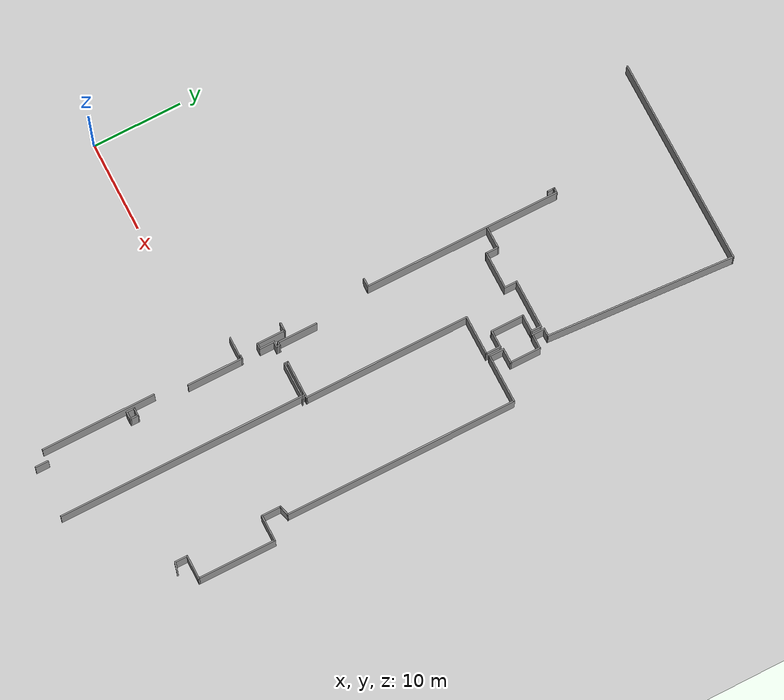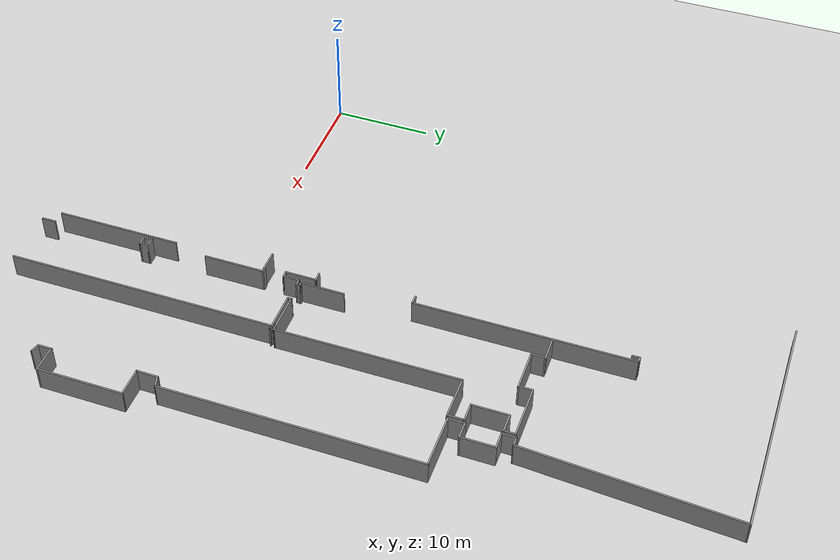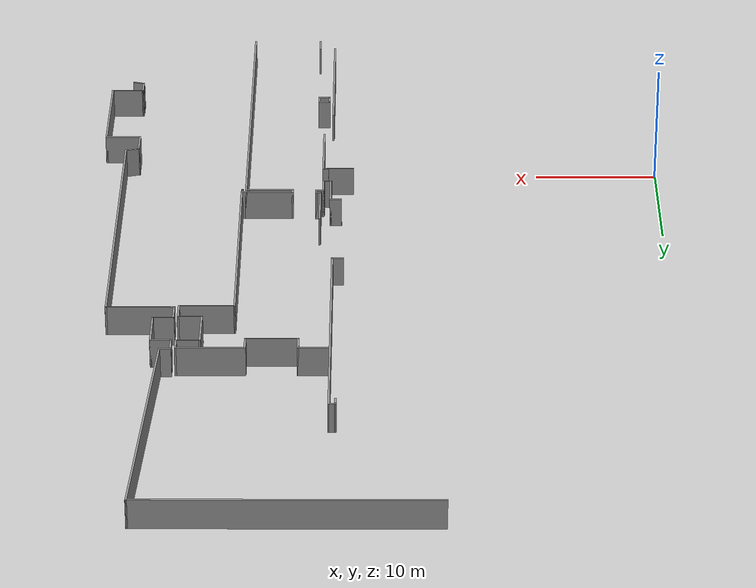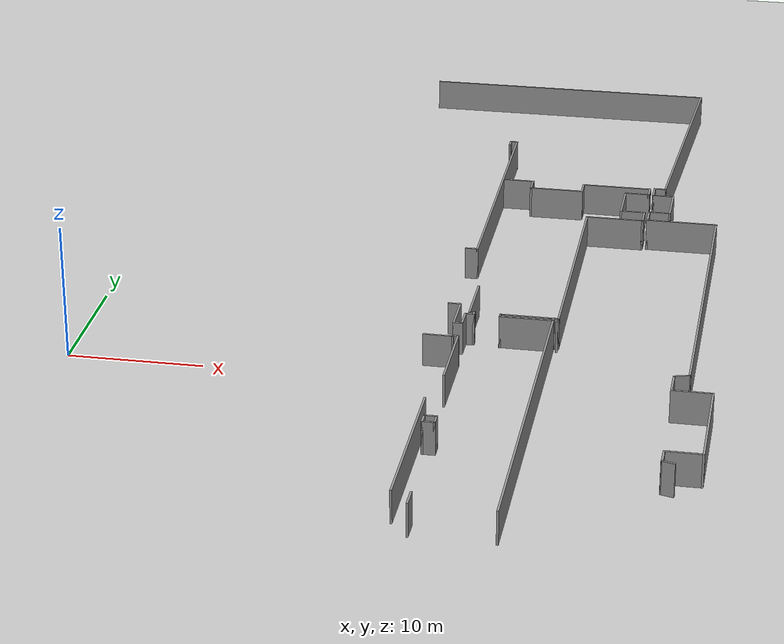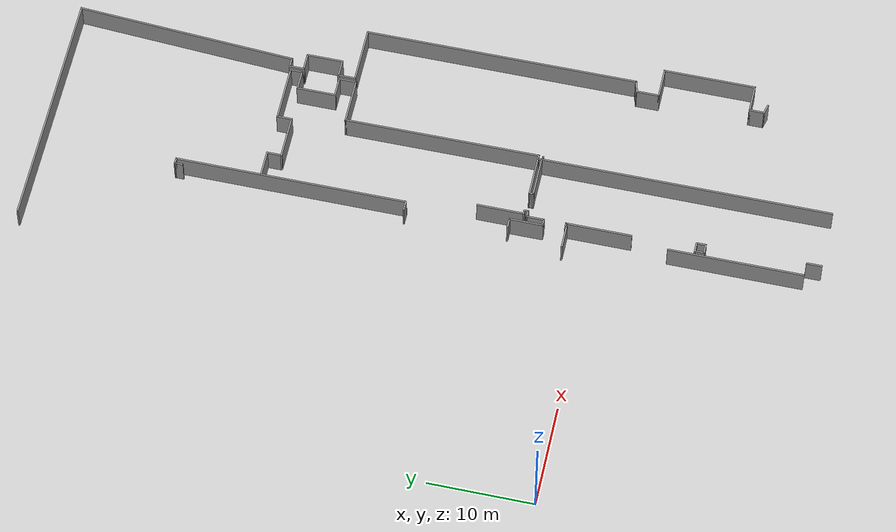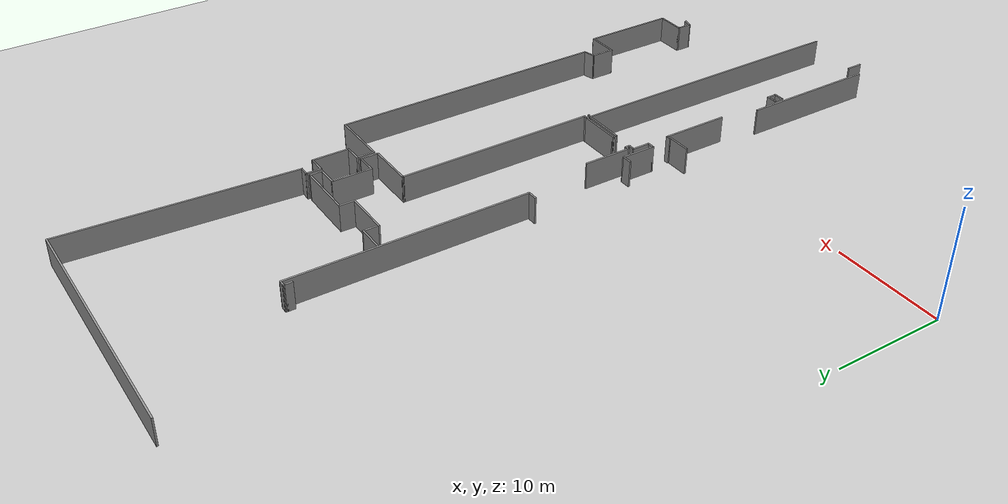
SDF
<sdf version="1.6">
 <world name="default">
  <model name="ground_plane">
   <static>1</static>
   <link name="link">
    <collision name="collision">
     <geometry><plane><normal>0 0 1</normal><size>100 100</size></plane></geometry>
     <surface><friction><ode><mu>100</mu><mu2>50</mu2></ode></friction></surface>
    </collision>
    <visual name="visual">
     <cast_shadows>0</cast_shadows>
     <geometry><plane><normal>0 0 1</normal><size>100 100</size></plane></geometry>
     <material>
      <script><uri>file://media/materials/scripts/gazebo.material</uri><name>Gazebo/Grey</name></script>
     </material>
    </visual>
   </link>
  </model>
  <model name="SEH_double_doors_open">
   <pose>0.441181 0.582592 0 0 -0 0</pose>
   <link name="Wall_12">
    <collision name="Wall_12_Collision">
     <geometry><box><size>1 0.15 2.5</size></box></geometry>
     <pose>0 0 1.25 0 -0 0</pose>
    </collision>
    <visual name="Wall_12_Visual">
     <pose>0 0 1.25 0 -0 0</pose>
     <geometry><box><size>1 0.15 2.5</size></box></geometry>
     <material>
      <script><uri>file://media/materials/scripts/gazebo.material</uri><name>Gazebo/Grey</name></script>
      <ambient>1 1 1 1</ambient>
     </material>
     <meta><layer>0</layer></meta>
    </visual>
    <pose>26.1957 17.3863 0 0 -0 0</pose>
   </link>
   <link name="Wall_128">
    <collision name="Wall_128_Collision">
     <geometry><box><size>6.25 0.15 2.5</size></box></geometry>
     <pose>0 0 1.25 0 -0 0</pose>
    </collision>
    <visual name="Wall_128_Visual">
     <pose>0 0 1.25 0 -0 0</pose>
     <geometry><box><size>6.25 0.15 2.5</size></box></geometry>
     <material>
      <script><uri>file://media/materials/scripts/gazebo.material</uri><name>Gazebo/Grey</name></script>
      <ambient>1 1 1 1</ambient>
     </material>
     <meta><layer>0</layer></meta>
    </visual>
    <pose>27.5298 -0.604664 0 0 -0 1.5708</pose>
   </link>
   <link name="Wall_129">
    <collision name="Wall_129_Collision">
     <geometry><box><size>0.5 0.15 2.5</size></box></geometry>
     <pose>0 0 1.25 0 -0 0</pose>
    </collision>
    <visual name="Wall_129_Visual">
     <pose>0 0 1.25 0 -0 0</pose>
     <geometry><box><size>0.5 0.15 2.5</size></box></geometry>
     <material>
      <script><uri>file://media/materials/scripts/gazebo.material</uri><name>Gazebo/Grey</name></script>
      <ambient>1 1 1 1</ambient>
     </material>
     <meta><layer>0</layer></meta>
    </visual>
    <pose>27.3548 2.44534 0 0 -0 3.14159</pose>
   </link>
   <link name="Wall_13">
    <collision name="Wall_13_Collision">
     <geometry><box><size>22 0.15 2.5</size></box></geometry>
     <pose>0 0 1.25 0 -0 0</pose>
    </collision>
    <visual name="Wall_13_Visual">
     <pose>0 0 1.25 0 -0 0</pose>
     <geometry><box><size>22 0.15 2.5</size></box></geometry>
     <material>
      <script><uri>file://media/materials/scripts/gazebo.material</uri><name>Gazebo/Grey</name></script>
      <ambient>1 1 1 1</ambient>
     </material>
     <meta><layer>0</layer></meta>
    </visual>
    <pose>26.6207 28.3113 0 0 -0 1.5708</pose>
   </link>
   <link name="Wall_133">
    <collision name="Wall_133_Collision">
     <geometry><box><size>0.25 0.15 2.5</size></box></geometry>
     <pose>0 0 1.25 0 -0 0</pose>
    </collision>
    <visual name="Wall_133_Visual">
     <pose>0 0 1.25 0 -0 0</pose>
     <geometry><box><size>0.25 0.15 2.5</size></box></geometry>
     <material>
      <script><uri>file://media/materials/scripts/gazebo.material</uri><name>Gazebo/Grey</name></script>
      <ambient>1 1 1 1</ambient>
     </material>
     <meta><layer>0</layer></meta>
    </visual>
    <pose>27.1798 2.39534 0 0 0 -1.5708</pose>
   </link>
   <link name="Wall_134">
    <collision name="Wall_134_Collision">
     <geometry><box><size>2.25 0.15 2.5</size></box></geometry>
     <pose>0 0 1.25 0 -0 0</pose>
    </collision>
    <visual name="Wall_134_Visual">
     <pose>0 0 1.25 0 -0 0</pose>
     <geometry><box><size>2.25 0.15 2.5</size></box></geometry>
     <material>
      <script><uri>file://media/materials/scripts/gazebo.material</uri><name>Gazebo/Grey</name></script>
      <ambient>1 1 1 1</ambient>
     </material>
     <meta><layer>0</layer></meta>
    </visual>
    <pose>26.1298 2.34534 0 0 -0 3.14159</pose>
   </link>
   <link name="Wall_144">
    <collision name="Wall_144_Collision">
     <geometry><box><size>1 0.15 2.5</size></box></geometry>
     <pose>0 0 1.25 0 -0 0</pose>
    </collision>
    <visual name="Wall_144_Visual">
     <pose>0 0 1.25 0 -0 0</pose>
     <geometry><box><size>1 0.15 2.5</size></box></geometry>
     <material>
      <script><uri>file://media/materials/scripts/gazebo.material</uri><name>Gazebo/Grey</name></script>
      <ambient>1 1 1 1</ambient>
     </material>
     <meta><layer>0</layer></meta>
    </visual>
    <pose>26.4548 7.64534 0 0 -0 0</pose>
   </link>
   <link name="Wall_145">
    <collision name="Wall_145_Collision">
     <geometry><box><size>3.25 0.15 2.5</size></box></geometry>
     <pose>0 0 1.25 0 -0 0</pose>
    </collision>
    <visual name="Wall_145_Visual">
     <pose>0 0 1.25 0 -0 0</pose>
     <geometry><box><size>3.25 0.15 2.5</size></box></geometry>
     <material>
      <script><uri>file://media/materials/scripts/gazebo.material</uri><name>Gazebo/Grey</name></script>
      <ambient>1 1 1 1</ambient>
     </material>
     <meta><layer>0</layer></meta>
    </visual>
    <pose>26.8798 6.09534 0 0 0 -1.5708</pose>
   </link>
   <link name="Wall_146">
    <collision name="Wall_146_Collision">
     <geometry><box><size>0.75 0.15 2.5</size></box></geometry>
     <pose>0 0 1.25 0 -0 0</pose>
    </collision>
    <visual name="Wall_146_Visual">
     <pose>0 0 1.25 0 -0 0</pose>
     <geometry><box><size>0.75 0.15 2.5</size></box></geometry>
     <material>
      <script><uri>file://media/materials/scripts/gazebo.material</uri><name>Gazebo/Grey</name></script>
      <ambient>1 1 1 1</ambient>
     </material>
     <meta><layer>0</layer></meta>
    </visual>
    <pose>27.1798 4.54534 0 0 -0 0</pose>
   </link>
   <link name="Wall_147">
    <collision name="Wall_147_Collision">
     <geometry><box><size>1.75 0.15 2.5</size></box></geometry>
     <pose>0 0 1.25 0 -0 0</pose>
    </collision>
    <visual name="Wall_147_Visual">
     <pose>0 0 1.25 0 -0 0</pose>
     <geometry><box><size>1.75 0.15 2.5</size></box></geometry>
     <material>
      <script><uri>file://media/materials/scripts/gazebo.material</uri><name>Gazebo/Grey</name></script>
      <ambient>1 1 1 1</ambient>
     </material>
     <meta><layer>0</layer></meta>
    </visual>
    <pose>27.4798 5.34534 0 0 -0 1.5708</pose>
   </link>
   <link name="Wall_148">
    <collision name="Wall_148_Collision">
     <geometry><box><size>0.75 0.15 2.5</size></box></geometry>
     <pose>0 0 1.25 0 -0 0</pose>
    </collision>
    <visual name="Wall_148_Visual">
     <pose>0 0 1.25 0 -0 0</pose>
     <geometry><box><size>0.75 0.15 2.5</size></box></geometry>
     <material>
      <script><uri>file://media/materials/scripts/gazebo.material</uri><name>Gazebo/Grey</name></script>
      <ambient>1 1 1 1</ambient>
     </material>
     <meta><layer>0</layer></meta>
    </visual>
    <pose>27.7798 6.14534 0 0 -0 0</pose>
   </link>
   <link name="Wall_150">
    <collision name="Wall_150_Collision">
     <geometry><box><size>4 0.15 2.5</size></box></geometry>
     <pose>0 0 1.25 0 -0 0</pose>
    </collision>
    <visual name="Wall_150_Visual">
     <pose>0 0 1.25 0 -0 0</pose>
     <geometry><box><size>4 0.15 2.5</size></box></geometry>
     <material>
      <script><uri>file://media/materials/scripts/gazebo.material</uri><name>Gazebo/Grey</name></script>
      <ambient>1 1 1 1</ambient>
     </material>
     <meta><layer>0</layer></meta>
    </visual>
    <pose>31.9514 6.07094 0 0 -0 0</pose>
   </link>
   <link name="Wall_151">
    <collision name="Wall_151_Collision">
     <geometry><box><size>27.5 0.15 2.5</size></box></geometry>
     <pose>0 0 1.25 0 -0 0</pose>
    </collision>
    <visual name="Wall_151_Visual">
     <pose>0 0 1.25 0 -0 0</pose>
     <geometry><box><size>27.5 0.15 2.5</size></box></geometry>
     <material>
      <script><uri>file://media/materials/scripts/gazebo.material</uri><name>Gazebo/Grey</name></script>
      <ambient>1 1 1 1</ambient>
     </material>
     <meta><layer>0</layer></meta>
    </visual>
    <pose>33.8764 -7.60406 0 0 0 -1.5708</pose>
   </link>
   <link name="Wall_157">
    <collision name="Wall_157_Collision">
     <geometry><box><size>1.5 0.15 2.5</size></box></geometry>
     <pose>0 0 1.25 0 -0 0</pose>
    </collision>
    <visual name="Wall_157_Visual">
     <pose>0 0 1.25 0 -0 0</pose>
     <geometry><box><size>1.5 0.15 2.5</size></box></geometry>
     <material>
      <script><uri>file://media/materials/scripts/gazebo.material</uri><name>Gazebo/Grey</name></script>
      <ambient>1 1 1 1</ambient>
     </material>
     <meta><layer>0</layer></meta>
    </visual>
    <pose>28.1145 -20.6271 0 0 -0 1.5708</pose>
   </link>
   <link name="Wall_171">
    <collision name="Wall_171_Collision">
     <geometry><box><size>12.75 0.15 2.5</size></box></geometry>
     <pose>0 0 1.25 0 -0 0</pose>
    </collision>
    <visual name="Wall_171_Visual">
     <pose>0 0 1.25 0 -0 0</pose>
     <geometry><box><size>12.75 0.15 2.5</size></box></geometry>
     <material>
      <script><uri>file://media/materials/scripts/gazebo.material</uri><name>Gazebo/Grey</name></script>
      <ambient>1 1 1 1</ambient>
     </material>
     <meta><layer>0</layer></meta>
    </visual>
    <pose>26.8056 -13.5556 0 0 -0 1.5708</pose>
   </link>
   <link name="Wall_180">
    <collision name="Wall_180_Collision">
     <geometry><box><size>1 0.15 2.5</size></box></geometry>
     <pose>0 0 1.25 0 -0 0</pose>
    </collision>
    <visual name="Wall_180_Visual">
     <pose>0 0 1.25 0 -0 0</pose>
     <geometry><box><size>1 0.15 2.5</size></box></geometry>
     <material>
      <script><uri>file://media/materials/scripts/gazebo.material</uri><name>Gazebo/Grey</name></script>
      <ambient>1 1 1 1</ambient>
     </material>
     <meta><layer>0</layer></meta>
    </visual>
    <pose>27.1904 -10.1014 0 0 0 -1.5708</pose>
   </link>
   <link name="Wall_181">
    <collision name="Wall_181_Collision">
     <geometry><box><size>1 0.15 2.5</size></box></geometry>
     <pose>0 0 1.25 0 -0 0</pose>
    </collision>
    <visual name="Wall_181_Visual">
     <pose>0 0 1.25 0 -0 0</pose>
     <geometry><box><size>1 0.15 2.5</size></box></geometry>
     <material>
      <script><uri>file://media/materials/scripts/gazebo.material</uri><name>Gazebo/Grey</name></script>
      <ambient>1 1 1 1</ambient>
     </material>
     <meta><layer>0</layer></meta>
    </visual>
    <pose>27.6154 -10.5264 0 0 -0 0</pose>
   </link>
   <link name="Wall_182">
    <collision name="Wall_182_Collision">
     <geometry><box><size>1 0.15 2.5</size></box></geometry>
     <pose>0 0 1.25 0 -0 0</pose>
    </collision>
    <visual name="Wall_182_Visual">
     <pose>0 0 1.25 0 -0 0</pose>
     <geometry><box><size>1 0.15 2.5</size></box></geometry>
     <material>
      <script><uri>file://media/materials/scripts/gazebo.material</uri><name>Gazebo/Grey</name></script>
      <ambient>1 1 1 1</ambient>
     </material>
     <meta><layer>0</layer></meta>
    </visual>
    <pose>28.0404 -10.1014 0 0 -0 1.5708</pose>
   </link>
   <link name="Wall_183">
    <collision name="Wall_183_Collision">
     <geometry><box><size>1 0.15 2.5</size></box></geometry>
     <pose>0 0 1.25 0 -0 0</pose>
    </collision>
    <visual name="Wall_183_Visual">
     <pose>0 0 1.25 0 -0 0</pose>
     <geometry><box><size>1 0.15 2.5</size></box></geometry>
     <material>
      <script><uri>file://media/materials/scripts/gazebo.material</uri><name>Gazebo/Grey</name></script>
      <ambient>1 1 1 1</ambient>
     </material>
     <meta><layer>0</layer></meta>
    </visual>
    <pose>27.6154 -9.67638 0 0 -0 3.14159</pose>
   </link>
   <link name="Wall_19">
    <collision name="Wall_19_Collision">
     <geometry><box><size>23.25 0.15 2.5</size></box></geometry>
     <pose>0 0 1.25 0 -0 0</pose>
    </collision>
    <visual name="Wall_19_Visual">
     <pose>0 0 1.25 0 -0 0</pose>
     <geometry><box><size>23.25 0.15 2.5</size></box></geometry>
     <material>
      <script><uri>file://media/materials/scripts/gazebo.material</uri><name>Gazebo/Grey</name></script>
      <ambient>1 1 1 1</ambient>
     </material>
     <meta><layer>0</layer></meta>
    </visual>
    <pose>29.4912 52.1416 0 0 -0 0</pose>
   </link>
   <link name="Wall_191">
    <collision name="Wall_191_Collision">
     <geometry><box><size>4.5 0.15 2.5</size></box></geometry>
     <pose>0 0 1.25 0 -0 0</pose>
    </collision>
    <visual name="Wall_191_Visual">
     <pose>0 0 1.25 0 -0 0</pose>
     <geometry><box><size>4.5 0.15 2.5</size></box></geometry>
     <material>
      <script><uri>file://media/materials/scripts/gazebo.material</uri><name>Gazebo/Grey</name></script>
      <ambient>1 1 1 1</ambient>
     </material>
     <meta><layer>0</layer></meta>
    </visual>
    <pose>36.3531 24.8463 0 0 -0 0</pose>
   </link>
   <link name="Wall_192">
    <collision name="Wall_192_Collision">
     <geometry><box><size>1.75 0.15 2.5</size></box></geometry>
     <pose>0 0 1.25 0 -0 0</pose>
    </collision>
    <visual name="Wall_192_Visual">
     <pose>0 0 1.25 0 -0 0</pose>
     <geometry><box><size>1.75 0.15 2.5</size></box></geometry>
     <material>
      <script><uri>file://media/materials/scripts/gazebo.material</uri><name>Gazebo/Grey</name></script>
      <ambient>1 1 1 1</ambient>
     </material>
     <meta><layer>0</layer></meta>
    </visual>
    <pose>38.528 25.6463 0 0 -0 1.5708</pose>
   </link>
   <link name="Wall_193">
    <collision name="Wall_193_Collision">
     <geometry><box><size>2 0.15 2.5</size></box></geometry>
     <pose>0 0 1.25 0 -0 0</pose>
    </collision>
    <visual name="Wall_193_Visual">
     <pose>0 0 1.25 0 -0 0</pose>
     <geometry><box><size>2 0.15 2.5</size></box></geometry>
     <material>
      <script><uri>file://media/materials/scripts/gazebo.material</uri><name>Gazebo/Grey</name></script>
      <ambient>1 1 1 1</ambient>
     </material>
     <meta><layer>0</layer></meta>
    </visual>
    <pose>37.6031 26.4463 0 0 -0 3.14159</pose>
   </link>
   <link name="Wall_194">
    <collision name="Wall_194_Collision">
     <geometry><box><size>3.75 0.15 2.5</size></box></geometry>
     <pose>0 0 1.25 0 -0 0</pose>
    </collision>
    <visual name="Wall_194_Visual">
     <pose>0 0 1.25 0 -0 0</pose>
     <geometry><box><size>3.75 0.15 2.5</size></box></geometry>
     <material>
      <script><uri>file://media/materials/scripts/gazebo.material</uri><name>Gazebo/Grey</name></script>
      <ambient>1 1 1 1</ambient>
     </material>
     <meta><layer>0</layer></meta>
    </visual>
    <pose>36.678 28.2463 0 0 -0 1.5708</pose>
   </link>
   <link name="Wall_195">
    <collision name="Wall_195_Collision">
     <geometry><box><size>2 0.15 2.5</size></box></geometry>
     <pose>0 0 1.25 0 -0 0</pose>
    </collision>
    <visual name="Wall_195_Visual">
     <pose>0 0 1.25 0 -0 0</pose>
     <geometry><box><size>2 0.15 2.5</size></box></geometry>
     <material>
      <script><uri>file://media/materials/scripts/gazebo.material</uri><name>Gazebo/Grey</name></script>
      <ambient>1 1 1 1</ambient>
     </material>
     <meta><layer>0</layer></meta>
    </visual>
    <pose>37.6031 30.0463 0 0 -0 0</pose>
   </link>
   <link name="Wall_198">
    <collision name="Wall_198_Collision">
     <geometry><box><size>1.25 0.15 2.5</size></box></geometry>
     <pose>0 0 1.25 0 -0 0</pose>
    </collision>
    <visual name="Wall_198_Visual">
     <pose>0 0 1.25 0 -0 0</pose>
     <geometry><box><size>1.25 0.15 2.5</size></box></geometry>
     <material>
      <script><uri>file://media/materials/scripts/gazebo.material</uri><name>Gazebo/Grey</name></script>
      <ambient>1 1 1 1</ambient>
     </material>
     <meta><layer>0</layer></meta>
    </visual>
    <pose>38.528 30.5963 0 0 -0 1.5708</pose>
   </link>
   <link name="Wall_199">
    <collision name="Wall_199_Collision">
     <geometry><box><size>5.5 0.15 2.5</size></box></geometry>
     <pose>0 0 1.25 0 -0 0</pose>
    </collision>
    <visual name="Wall_199_Visual">
     <pose>0 0 1.25 0 -0 0</pose>
     <geometry><box><size>5.5 0.15 2.5</size></box></geometry>
     <material>
      <script><uri>file://media/materials/scripts/gazebo.material</uri><name>Gazebo/Grey</name></script>
      <ambient>1 1 1 1</ambient>
     </material>
     <meta><layer>0</layer></meta>
    </visual>
    <pose>35.8531 31.1463 0 0 -0 3.14159</pose>
   </link>
   <link name="Wall_200">
    <collision name="Wall_200_Collision">
     <geometry><box><size>1.5 0.15 2.5</size></box></geometry>
     <pose>0 0 1.25 0 -0 0</pose>
    </collision>
    <visual name="Wall_200_Visual">
     <pose>0 0 1.25 0 -0 0</pose>
     <geometry><box><size>1.5 0.15 2.5</size></box></geometry>
     <material>
      <script><uri>file://media/materials/scripts/gazebo.material</uri><name>Gazebo/Grey</name></script>
      <ambient>1 1 1 1</ambient>
     </material>
     <meta><layer>0</layer></meta>
    </visual>
    <pose>33.178 30.4713 0 0 0 -1.5708</pose>
   </link>
   <link name="Wall_201">
    <collision name="Wall_201_Collision">
     <geometry><box><size>4.25 0.15 2.5</size></box></geometry>
     <pose>0 0 1.25 0 -0 0</pose>
    </collision>
    <visual name="Wall_201_Visual">
     <pose>0 0 1.25 0 -0 0</pose>
     <geometry><box><size>4.25 0.15 2.5</size></box></geometry>
     <material>
      <script><uri>file://media/materials/scripts/gazebo.material</uri><name>Gazebo/Grey</name></script>
      <ambient>1 1 1 1</ambient>
     </material>
     <meta><layer>0</layer></meta>
    </visual>
    <pose>31.128 29.7963 0 0 -0 3.14159</pose>
   </link>
   <link name="Wall_202">
    <collision name="Wall_202_Collision">
     <geometry><box><size>1.5 0.15 2.5</size></box></geometry>
     <pose>0 0 1.25 0 -0 0</pose>
    </collision>
    <visual name="Wall_202_Visual">
     <pose>0 0 1.25 0 -0 0</pose>
     <geometry><box><size>1.5 0.15 2.5</size></box></geometry>
     <material>
      <script><uri>file://media/materials/scripts/gazebo.material</uri><name>Gazebo/Grey</name></script>
      <ambient>1 1 1 1</ambient>
     </material>
     <meta><layer>0</layer></meta>
    </visual>
    <pose>29.078 30.4713 0 0 -0 1.5708</pose>
   </link>
   <link name="Wall_203">
    <collision name="Wall_203_Collision">
     <geometry><box><size>2.5 0.15 2.5</size></box></geometry>
     <pose>0 0 1.25 0 -0 0</pose>
    </collision>
    <visual name="Wall_203_Visual">
     <pose>0 0 1.25 0 -0 0</pose>
     <geometry><box><size>2.5 0.15 2.5</size></box></geometry>
     <material>
      <script><uri>file://media/materials/scripts/gazebo.material</uri><name>Gazebo/Grey</name></script>
      <ambient>1 1 1 1</ambient>
     </material>
     <meta><layer>0</layer></meta>
    </visual>
    <pose>27.903 31.1463 0 0 -0 3.14159</pose>
   </link>
   <link name="Wall_209">
    <collision name="Wall_209_Collision">
     <geometry><box><size>0.5 0.15 2.5</size></box></geometry>
     <pose>0 0 1.25 0 -0 0</pose>
    </collision>
    <visual name="Wall_209_Visual">
     <pose>0 0 1.25 0 -0 0</pose>
     <geometry><box><size>0.5 0.15 2.5</size></box></geometry>
     <material>
      <script><uri>file://media/materials/scripts/gazebo.material</uri><name>Gazebo/Grey</name></script>
      <ambient>1 1 1 1</ambient>
     </material>
     <meta><layer>0</layer></meta>
    </visual>
    <pose>28.0798 6.32034 0 0 -0 1.5708</pose>
   </link>
   <link name="Wall_21">
    <collision name="Wall_21_Collision">
     <geometry><box><size>21.0081 0.15 2.5</size></box></geometry>
     <pose>0 0 1.25 0 -0 0</pose>
    </collision>
    <visual name="Wall_21_Visual">
     <pose>0 0 1.25 0 -0 0</pose>
     <geometry><box><size>21.0081 0.15 2.5</size></box></geometry>
     <material>
      <script><uri>file://media/materials/scripts/gazebo.material</uri><name>Gazebo/Grey</name></script>
      <ambient>1 1 1 1</ambient>
     </material>
     <meta><layer>0</layer></meta>
    </visual>
    <pose>40.3959 41.7325 0 0 -0 1.50888</pose>
   </link>
   <link name="Wall_210">
    <collision name="Wall_210_Collision">
     <geometry><box><size>0.5 0.15 2.5</size></box></geometry>
     <pose>0 0 1.25 0 -0 0</pose>
    </collision>
    <visual name="Wall_210_Visual">
     <pose>0 0 1.25 0 -0 0</pose>
     <geometry><box><size>0.5 0.15 2.5</size></box></geometry>
     <material>
      <script><uri>file://media/materials/scripts/gazebo.material</uri><name>Gazebo/Grey</name></script>
      <ambient>1 1 1 1</ambient>
     </material>
     <meta><layer>0</layer></meta>
    </visual>
    <pose>27.9048 6.49534 0 0 -0 3.14159</pose>
   </link>
   <link name="Wall_211">
    <collision name="Wall_211_Collision">
     <geometry><box><size>4.5 0.15 2.5</size></box></geometry>
     <pose>0 0 1.25 0 -0 0</pose>
    </collision>
    <visual name="Wall_211_Visual">
     <pose>0 0 1.25 0 -0 0</pose>
     <geometry><box><size>4.5 0.15 2.5</size></box></geometry>
     <material>
      <script><uri>file://media/materials/scripts/gazebo.material</uri><name>Gazebo/Grey</name></script>
      <ambient>1 1 1 1</ambient>
     </material>
     <meta><layer>0</layer></meta>
    </visual>
    <pose>27.7298 8.67034 0 0 -0 1.5708</pose>
   </link>
   <link name="Wall_214">
    <collision name="Wall_214_Collision">
     <geometry><box><size>0.75 0.15 2.5</size></box></geometry>
     <pose>0 0 1.25 0 -0 0</pose>
    </collision>
    <visual name="Wall_214_Visual">
     <pose>0 0 1.25 0 -0 0</pose>
     <geometry><box><size>0.75 0.15 2.5</size></box></geometry>
     <material>
      <script><uri>file://media/materials/scripts/gazebo.material</uri><name>Gazebo/Grey</name></script>
      <ambient>1 1 1 1</ambient>
     </material>
     <meta><layer>0</layer></meta>
    </visual>
    <pose>26.1158 38.8449 0 0 -0 1.5708</pose>
   </link>
   <link name="Wall_215">
    <collision name="Wall_215_Collision">
     <geometry><box><size>0.25 0.15 2.5</size></box></geometry>
     <pose>0 0 1.25 0 -0 0</pose>
    </collision>
    <visual name="Wall_215_Visual">
     <pose>0 0 1.25 0 -0 0</pose>
     <geometry><box><size>0.25 0.15 2.5</size></box></geometry>
     <material>
      <script><uri>file://media/materials/scripts/gazebo.material</uri><name>Gazebo/Grey</name></script>
      <ambient>1 1 1 1</ambient>
     </material>
     <meta><layer>0</layer></meta>
    </visual>
    <pose>26.1158 39.1949 0 0 -0 1.5708</pose>
   </link>
   <link name="Wall_216">
    <collision name="Wall_216_Collision">
     <geometry><box><size>0.655031 0.15 2.5</size></box></geometry>
     <pose>0 0 1.25 0 -0 0</pose>
    </collision>
    <visual name="Wall_216_Visual">
     <pose>0 0 1.25 0 -0 0</pose>
     <geometry><box><size>0.655031 0.15 2.5</size></box></geometry>
     <material>
      <script><uri>file://media/materials/scripts/gazebo.material</uri><name>Gazebo/Grey</name></script>
      <ambient>1 1 1 1</ambient>
     </material>
     <meta><layer>0</layer></meta>
    </visual>
    <pose>26.3682 39.2406 0 0 0 -0.017032</pose>
   </link>
   <link name="Wall_23">
    <collision name="Wall_23_Collision">
     <geometry><box><size>1 0.15 2.5</size></box></geometry>
     <pose>0 0 1.25 0 -0 0</pose>
    </collision>
    <visual name="Wall_23_Visual">
     <pose>0 0 1.25 0 -0 0</pose>
     <geometry><box><size>1 0.15 2.5</size></box></geometry>
     <material>
      <script><uri>file://media/materials/scripts/gazebo.material</uri><name>Gazebo/Grey</name></script>
      <ambient>1 1 1 1</ambient>
     </material>
     <meta><layer>0</layer></meta>
    </visual>
    <pose>39.3255 31.3235 0 0 -0 3.14159</pose>
   </link>
   <link name="Wall_24">
    <collision name="Wall_24_Collision">
     <geometry><box><size>1.5 0.15 2.5</size></box></geometry>
     <pose>0 0 1.25 0 -0 0</pose>
    </collision>
    <visual name="Wall_24_Visual">
     <pose>0 0 1.25 0 -0 0</pose>
     <geometry><box><size>1.5 0.15 2.5</size></box></geometry>
     <material>
      <script><uri>file://media/materials/scripts/gazebo.material</uri><name>Gazebo/Grey</name></script>
      <ambient>1 1 1 1</ambient>
     </material>
     <meta><layer>0</layer></meta>
    </visual>
    <pose>38.9005 30.6485 0 0 0 -1.5708</pose>
   </link>
   <link name="Wall_25">
    <collision name="Wall_25_Collision">
     <geometry><box><size>1.75 0.15 2.5</size></box></geometry>
     <pose>0 0 1.25 0 -0 0</pose>
    </collision>
    <visual name="Wall_25_Visual">
     <pose>0 0 1.25 0 -0 0</pose>
     <geometry><box><size>1.75 0.15 2.5</size></box></geometry>
     <material>
      <script><uri>file://media/materials/scripts/gazebo.material</uri><name>Gazebo/Grey</name></script>
      <ambient>1 1 1 1</ambient>
     </material>
     <meta><layer>0</layer></meta>
    </visual>
    <pose>39.7005 29.9735 0 0 -0 0</pose>
   </link>
   <link name="Wall_26">
    <collision name="Wall_26_Collision">
     <geometry><box><size>3.5 0.15 2.5</size></box></geometry>
     <pose>0 0 1.25 0 -0 0</pose>
    </collision>
    <visual name="Wall_26_Visual">
     <pose>0 0 1.25 0 -0 0</pose>
     <geometry><box><size>3.5 0.15 2.5</size></box></geometry>
     <material>
      <script><uri>file://media/materials/scripts/gazebo.material</uri><name>Gazebo/Grey</name></script>
      <ambient>1 1 1 1</ambient>
     </material>
     <meta><layer>0</layer></meta>
    </visual>
    <pose>40.5005 28.2985 0 0 0 -1.5708</pose>
   </link>
   <link name="Wall_27">
    <collision name="Wall_27_Collision">
     <geometry><box><size>1.75 0.15 2.5</size></box></geometry>
     <pose>0 0 1.25 0 -0 0</pose>
    </collision>
    <visual name="Wall_27_Visual">
     <pose>0 0 1.25 0 -0 0</pose>
     <geometry><box><size>1.75 0.15 2.5</size></box></geometry>
     <material>
      <script><uri>file://media/materials/scripts/gazebo.material</uri><name>Gazebo/Grey</name></script>
      <ambient>1 1 1 1</ambient>
     </material>
     <meta><layer>0</layer></meta>
    </visual>
    <pose>39.7005 26.6235 0 0 -0 3.14159</pose>
   </link>
   <link name="Wall_271">
    <collision name="Wall_271_Collision">
     <geometry><box><size>0.15 0.15 2.5</size></box></geometry>
     <pose>0 0 1.25 0 -0 0</pose>
    </collision>
    <visual name="Wall_271_Visual">
     <pose>0 0 1.25 0 -0 0</pose>
     <geometry><box><size>0.15 0.15 2.5</size></box></geometry>
     <material>
      <script><uri>file://media/materials/scripts/gazebo.material</uri><name>Gazebo/Grey</name></script>
      <ambient>1 1 1 1</ambient>
     </material>
     <meta><layer>0</layer></meta>
    </visual>
    <pose>33.6264 6.17094 0 0 -0 0</pose>
   </link>
   <link name="Wall_274">
    <collision name="Wall_274_Collision">
     <geometry><box><size>0.15 0.15 2.5</size></box></geometry>
     <pose>0 0 1.25 0 -0 0</pose>
    </collision>
    <visual name="Wall_274_Visual">
     <pose>0 0 1.25 0 -0 0</pose>
     <geometry><box><size>0.15 0.15 2.5</size></box></geometry>
     <material>
      <script><uri>file://media/materials/scripts/gazebo.material</uri><name>Gazebo/Grey</name></script>
      <ambient>1 1 1 1</ambient>
     </material>
     <meta><layer>0</layer></meta>
    </visual>
    <pose>34.178 5.99628 0 0 -0 0</pose>
   </link>
   <link name="Wall_277">
    <collision name="Wall_277_Collision">
     <geometry><box><size>0.5 0.15 2.5</size></box></geometry>
     <pose>0 0 1.25 0 -0 0</pose>
    </collision>
    <visual name="Wall_277_Visual">
     <pose>0 0 1.25 0 -0 0</pose>
     <geometry><box><size>0.5 0.15 2.5</size></box></geometry>
     <material>
      <script><uri>file://media/materials/scripts/gazebo.material</uri><name>Gazebo/Grey</name></script>
      <ambient>1 1 1 1</ambient>
     </material>
     <meta><layer>0</layer></meta>
    </visual>
    <pose>30.0264 6.24594 0 0 -0 1.5708</pose>
   </link>
   <link name="Wall_28">
    <collision name="Wall_28_Collision">
     <geometry><box><size>1.75 0.15 2.5</size></box></geometry>
     <pose>0 0 1.25 0 -0 0</pose>
    </collision>
    <visual name="Wall_28_Visual">
     <pose>0 0 1.25 0 -0 0</pose>
     <geometry><box><size>1.75 0.15 2.5</size></box></geometry>
     <material>
      <script><uri>file://media/materials/scripts/gazebo.material</uri><name>Gazebo/Grey</name></script>
      <ambient>1 1 1 1</ambient>
     </material>
     <meta><layer>0</layer></meta>
    </visual>
    <pose>38.9005 25.8235 0 0 0 -1.5708</pose>
   </link>
   <link name="Wall_280">
    <collision name="Wall_280_Collision">
     <geometry><box><size>4 0.15 2.5</size></box></geometry>
     <pose>0 0 1.25 0 -0 0</pose>
    </collision>
    <visual name="Wall_280_Visual">
     <pose>0 0 1.25 0 -0 0</pose>
     <geometry><box><size>4 0.15 2.5</size></box></geometry>
     <material>
      <script><uri>file://media/materials/scripts/gazebo.material</uri><name>Gazebo/Grey</name></script>
      <ambient>1 1 1 1</ambient>
     </material>
     <meta><layer>0</layer></meta>
    </visual>
    <pose>31.9514 6.42094 0 0 -0 0</pose>
   </link>
   <link name="Wall_281">
    <collision name="Wall_281_Collision">
     <geometry><box><size>0.5 0.15 2.5</size></box></geometry>
     <pose>0 0 1.25 0 -0 0</pose>
    </collision>
    <visual name="Wall_281_Visual">
     <pose>0 0 1.25 0 -0 0</pose>
     <geometry><box><size>0.5 0.15 2.5</size></box></geometry>
     <material>
      <script><uri>file://media/materials/scripts/gazebo.material</uri><name>Gazebo/Grey</name></script>
      <ambient>1 1 1 1</ambient>
     </material>
     <meta><layer>0</layer></meta>
    </visual>
    <pose>33.8764 6.24594 0 0 0 -1.5708</pose>
   </link>
   <link name="Wall_286">
    <collision name="Wall_286_Collision">
     <geometry><box><size>0.5 0.15 2.5</size></box></geometry>
     <pose>0 0 1.25 0 -0 0</pose>
    </collision>
    <visual name="Wall_286_Visual">
     <pose>0 0 1.25 0 -0 0</pose>
     <geometry><box><size>0.5 0.15 2.5</size></box></geometry>
     <material>
      <script><uri>file://media/materials/scripts/gazebo.material</uri><name>Gazebo/Grey</name></script>
      <ambient>1 1 1 1</ambient>
     </material>
     <meta><layer>0</layer></meta>
    </visual>
    <pose>34.0514 6.42094 0 0 -0 0</pose>
   </link>
   <link name="Wall_287">
    <collision name="Wall_287_Collision">
     <geometry><box><size>18.5754 0.15 2.5</size></box></geometry>
     <pose>0 0 1.25 0 -0 0</pose>
    </collision>
    <visual name="Wall_287_Visual">
     <pose>0 0 1.25 0 -0 0</pose>
     <geometry><box><size>18.5754 0.15 2.5</size></box></geometry>
     <material>
      <script><uri>file://media/materials/scripts/gazebo.material</uri><name>Gazebo/Grey</name></script>
      <ambient>1 1 1 1</ambient>
     </material>
     <meta><layer>0</layer></meta>
    </visual>
    <pose>34.2022 15.6336 0 0 -0 1.57342</pose>
   </link>
   <link name="Wall_29">
    <collision name="Wall_29_Collision">
     <geometry><box><size>5.5 0.15 2.5</size></box></geometry>
     <pose>0 0 1.25 0 -0 0</pose>
    </collision>
    <visual name="Wall_29_Visual">
     <pose>0 0 1.25 0 -0 0</pose>
     <geometry><box><size>5.5 0.15 2.5</size></box></geometry>
     <material>
      <script><uri>file://media/materials/scripts/gazebo.material</uri><name>Gazebo/Grey</name></script>
      <ambient>1 1 1 1</ambient>
     </material>
     <meta><layer>0</layer></meta>
    </visual>
    <pose>41.5755 25.0235 0 0 -0 0</pose>
   </link>
   <link name="Wall_30">
    <collision name="Wall_30_Collision">
     <geometry><box><size>26 0.15 2.5</size></box></geometry>
     <pose>0 0 1.25 0 -0 0</pose>
    </collision>
    <visual name="Wall_30_Visual">
     <pose>0 0 1.25 0 -0 0</pose>
     <geometry><box><size>26 0.15 2.5</size></box></geometry>
     <material>
      <script><uri>file://media/materials/scripts/gazebo.material</uri><name>Gazebo/Grey</name></script>
      <ambient>1 1 1 1</ambient>
     </material>
     <meta><layer>0</layer></meta>
    </visual>
    <pose>44.2505 12.0985 0 0 0 -1.5708</pose>
   </link>
   <link name="Wall_31">
    <collision name="Wall_31_Collision">
     <geometry><box><size>1.25 0.15 2.5</size></box></geometry>
     <pose>0 0 1.25 0 -0 0</pose>
    </collision>
    <visual name="Wall_31_Visual">
     <pose>0 0 1.25 0 -0 0</pose>
     <geometry><box><size>1.25 0.15 2.5</size></box></geometry>
     <material>
      <script><uri>file://media/materials/scripts/gazebo.material</uri><name>Gazebo/Grey</name></script>
      <ambient>1 1 1 1</ambient>
     </material>
     <meta><layer>0</layer></meta>
    </visual>
    <pose>43.7193 -0.968854 0 0 0 -2.87979</pose>
   </link>
   <link name="Wall_32">
    <collision name="Wall_32_Collision">
     <geometry><box><size>2.25 0.15 2.5</size></box></geometry>
     <pose>0 0 1.25 0 -0 0</pose>
    </collision>
    <visual name="Wall_32_Visual">
     <pose>0 0 1.25 0 -0 0</pose>
     <geometry><box><size>2.25 0.15 2.5</size></box></geometry>
     <material>
      <script><uri>file://media/materials/scripts/gazebo.material</uri><name>Gazebo/Grey</name></script>
      <ambient>1 1 1 1</ambient>
     </material>
     <meta><layer>0</layer></meta>
    </visual>
    <pose>43.188 -2.1612 0 0 0 -1.5708</pose>
   </link>
   <link name="Wall_33">
    <collision name="Wall_33_Collision">
     <geometry><box><size>3 0.15 2.5</size></box></geometry>
     <pose>0 0 1.25 0 -0 0</pose>
    </collision>
    <visual name="Wall_33_Visual">
     <pose>0 0 1.25 0 -0 0</pose>
     <geometry><box><size>3 0.15 2.5</size></box></geometry>
     <material>
      <script><uri>file://media/materials/scripts/gazebo.material</uri><name>Gazebo/Grey</name></script>
      <ambient>1 1 1 1</ambient>
     </material>
     <meta><layer>0</layer></meta>
    </visual>
    <pose>44.613 -3.21121 0 0 -0 0</pose>
   </link>
   <link name="Wall_34">
    <collision name="Wall_34_Collision">
     <geometry><box><size>8.75 0.15 2.5</size></box></geometry>
     <pose>0 0 1.25 0 -0 0</pose>
    </collision>
    <visual name="Wall_34_Visual">
     <pose>0 0 1.25 0 -0 0</pose>
     <geometry><box><size>8.75 0.15 2.5</size></box></geometry>
     <material>
      <script><uri>file://media/materials/scripts/gazebo.material</uri><name>Gazebo/Grey</name></script>
      <ambient>1 1 1 1</ambient>
     </material>
     <meta><layer>0</layer></meta>
    </visual>
    <pose>46.038 -7.51121 0 0 0 -1.5708</pose>
   </link>
   <link name="Wall_35">
    <collision name="Wall_35_Collision">
     <geometry><box><size>2.75 0.15 2.5</size></box></geometry>
     <pose>0 0 1.25 0 -0 0</pose>
    </collision>
    <visual name="Wall_35_Visual">
     <pose>0 0 1.25 0 -0 0</pose>
     <geometry><box><size>2.75 0.15 2.5</size></box></geometry>
     <material>
      <script><uri>file://media/materials/scripts/gazebo.material</uri><name>Gazebo/Grey</name></script>
      <ambient>1 1 1 1</ambient>
     </material>
     <meta><layer>0</layer></meta>
    </visual>
    <pose>44.738 -11.8112 0 0 -0 3.14159</pose>
   </link>
   <link name="Wall_36">
    <collision name="Wall_36_Collision">
     <geometry><box><size>1.5 0.15 2.5</size></box></geometry>
     <pose>0 0 1.25 0 -0 0</pose>
    </collision>
    <visual name="Wall_36_Visual">
     <pose>0 0 1.25 0 -0 0</pose>
     <geometry><box><size>1.5 0.15 2.5</size></box></geometry>
     <material>
      <script><uri>file://media/materials/scripts/gazebo.material</uri><name>Gazebo/Grey</name></script>
      <ambient>1 1 1 1</ambient>
     </material>
     <meta><layer>0</layer></meta>
    </visual>
    <pose>43.438 -12.4862 0 0 0 -1.5708</pose>
   </link>
   <link name="Wall_37">
    <collision name="Wall_37_Collision">
     <geometry><box><size>1 0.15 2.5</size></box></geometry>
     <pose>0 0 1.25 0 -0 0</pose>
    </collision>
    <visual name="Wall_37_Visual">
     <pose>0 0 1.25 0 -0 0</pose>
     <geometry><box><size>1 0.15 2.5</size></box></geometry>
     <material>
      <script><uri>file://media/materials/scripts/gazebo.material</uri><name>Gazebo/Grey</name></script>
      <ambient>1 1 1 1</ambient>
     </material>
     <meta><layer>0</layer></meta>
    </visual>
    <pose>43.8485 -13.2712 0 0 0 -0.261799</pose>
   </link>
   <static>1</static>
  </model>
 </world>
</sdf>
